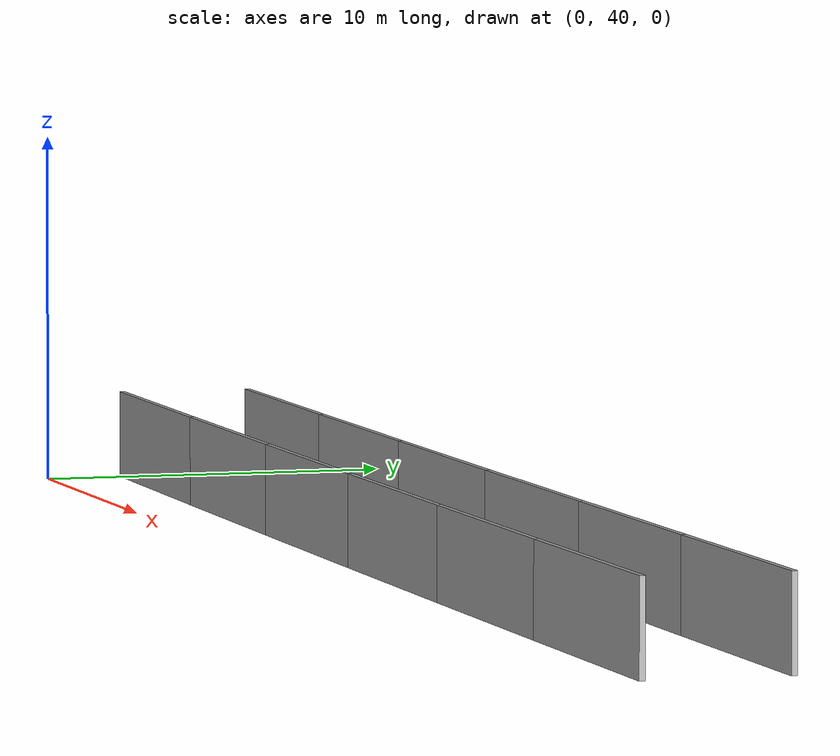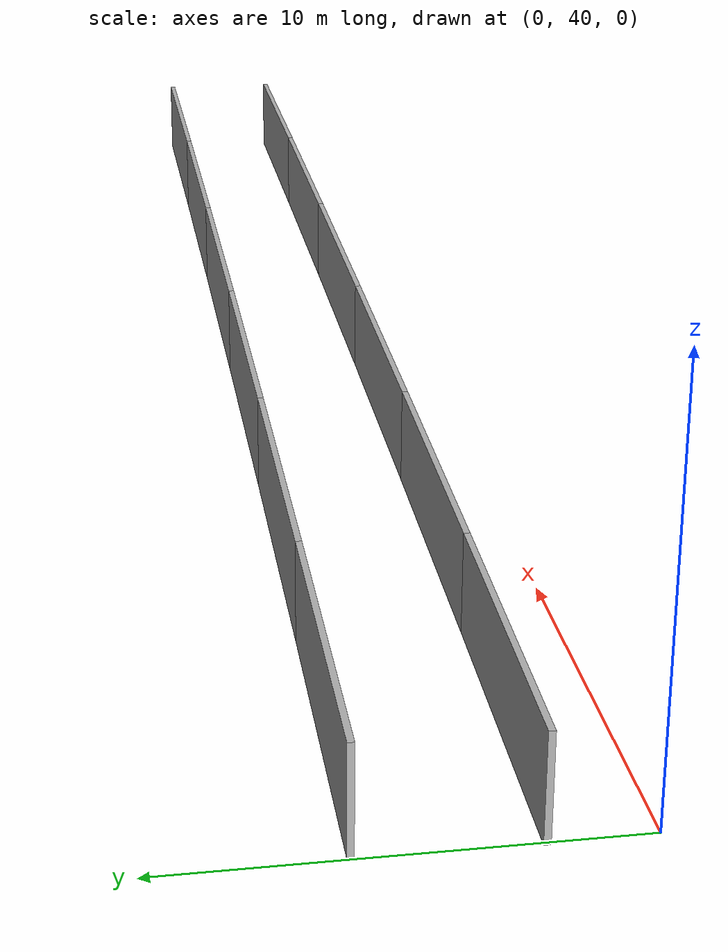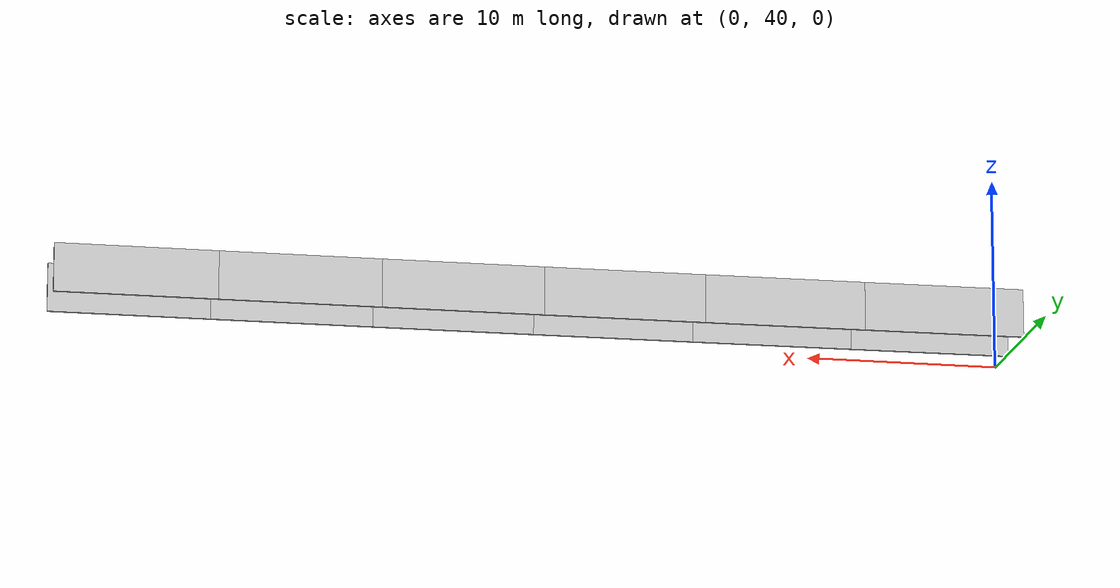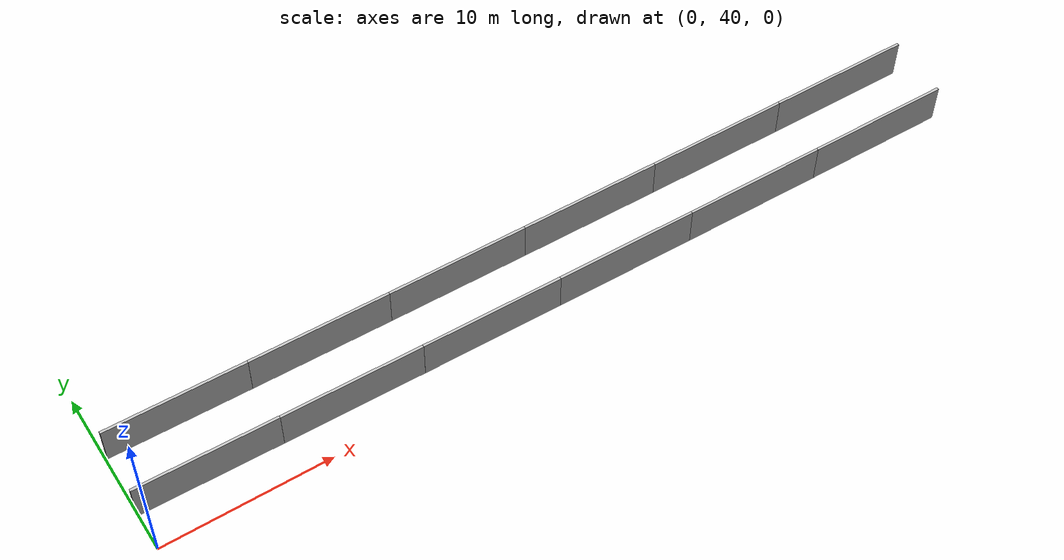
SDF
<?xml version="1.0" ?>
<sdf version="1.6">
  <model name="sps_4301">
    <pose frame="">0 0 0 0 -0 0</pose>
    <static>1</static>
    <self_collide>0</self_collide>
    <allow_auto_disable>0</allow_auto_disable>
    <link name="Wall8920">
      <kinematic>0</kinematic>
      <gravity>1</gravity>
      <self_collide>0</self_collide>
      <collision name="collision">
        <geometry>
          <box>
            <size>8.25175 0.15 2.5</size>
          </box>
        </geometry>
        <pose frame="">0 0 0 0 -0 0</pose>
      </collision>
      <visual name="visual">
        <geometry>
          <box>
            <size>8.25175 0.15 2.5</size>
          </box>
        </geometry>
        <pose frame="">0 0 0 0 -0 0</pose>
        <cast_shadows>1</cast_shadows>
        <transparency>0.0</transparency>
      </visual>
      <pose frame="">4.21148 45.9425 1.25 0 0 -0.0152155</pose>
    </link>
    <link name="Wall8921">
      <kinematic>0</kinematic>
      <gravity>1</gravity>
      <self_collide>0</self_collide>
      <collision name="collision">
        <geometry>
          <box>
            <size>8.25185 0.15 2.5</size>
          </box>
        </geometry>
        <pose frame="">0 0 0 0 -0 0</pose>
      </collision>
      <visual name="visual">
        <geometry>
          <box>
            <size>8.25185 0.15 2.5</size>
          </box>
        </geometry>
        <pose frame="">0 0 0 0 -0 0</pose>
        <cast_shadows>1</cast_shadows>
        <transparency>0.0</transparency>
      </visual>
      <pose frame="">12.4625 45.8265 1.25 0 0 -0.0128999</pose>
    </link>
    <link name="Wall8922">
      <kinematic>0</kinematic>
      <gravity>1</gravity>
      <self_collide>0</self_collide>
      <collision name="collision">
        <geometry>
          <box>
            <size>8.25168 0.15 2.5</size>
          </box>
        </geometry>
        <pose frame="">0 0 0 0 -0 0</pose>
      </collision>
      <visual name="visual">
        <geometry>
          <box>
            <size>8.25168 0.15 2.5</size>
          </box>
        </geometry>
        <pose frame="">0 0 0 0 -0 0</pose>
        <cast_shadows>1</cast_shadows>
        <transparency>0.0</transparency>
      </visual>
      <pose frame="">20.7136 45.7299 1.25 0 0 -0.0105183</pose>
    </link>
    <link name="Wall8923">
      <kinematic>0</kinematic>
      <gravity>1</gravity>
      <self_collide>0</self_collide>
      <collision name="collision">
        <geometry>
          <box>
            <size>8.25186 0.15 2.5</size>
          </box>
        </geometry>
        <pose frame="">0 0 0 0 -0 0</pose>
      </collision>
      <visual name="visual">
        <geometry>
          <box>
            <size>8.25186 0.15 2.5</size>
          </box>
        </geometry>
        <pose frame="">0 0 0 0 -0 0</pose>
        <cast_shadows>1</cast_shadows>
        <transparency>0.0</transparency>
      </visual>
      <pose frame="">28.965 45.6529 1.25 0 0 -0.00814367</pose>
    </link>
    <link name="Wall8924">
      <kinematic>0</kinematic>
      <gravity>1</gravity>
      <self_collide>0</self_collide>
      <collision name="collision">
        <geometry>
          <box>
            <size>8.25173 0.15 2.5</size>
          </box>
        </geometry>
        <pose frame="">0 0 0 0 -0 0</pose>
      </collision>
      <visual name="visual">
        <geometry>
          <box>
            <size>8.25173 0.15 2.5</size>
          </box>
        </geometry>
        <pose frame="">0 0 0 0 -0 0</pose>
        <cast_shadows>1</cast_shadows>
        <transparency>0.0</transparency>
      </visual>
      <pose frame="">37.2166 45.5953 1.25 0 0 -0.0058138</pose>
    </link>
    <link name="Wall8925">
      <kinematic>0</kinematic>
      <gravity>1</gravity>
      <self_collide>0</self_collide>
      <collision name="collision">
        <geometry>
          <box>
            <size>8.25188 0.15 2.5</size>
          </box>
        </geometry>
        <pose frame="">0 0 0 0 -0 0</pose>
      </collision>
      <visual name="visual">
        <geometry>
          <box>
            <size>8.25188 0.15 2.5</size>
          </box>
        </geometry>
        <pose frame="">0 0 0 0 -0 0</pose>
        <cast_shadows>1</cast_shadows>
        <transparency>0.0</transparency>
      </visual>
      <pose frame="">45.4683 45.5572 1.25 0 0 -0.0034172</pose>
    </link>
    <link name="Wall9011">
      <kinematic>0</kinematic>
      <gravity>1</gravity>
      <self_collide>0</self_collide>
      <collision name="collision">
        <geometry>
          <box>
            <size>8.26171 0.15 2.5</size>
          </box>
        </geometry>
        <pose frame="">0 0 0 0 -0 0</pose>
      </collision>
      <visual name="visual">
        <geometry>
          <box>
            <size>8.26171 0.15 2.5</size>
          </box>
        </geometry>
        <pose frame="">0 0 0 0 -0 0</pose>
        <cast_shadows>1</cast_shadows>
        <transparency>0.0</transparency>
      </visual>
      <pose frame="">4.06686 42.1876 1.25 0 0 -0.0152784</pose>
    </link>
    <link name="Wall9012">
      <kinematic>0</kinematic>
      <gravity>1</gravity>
      <self_collide>0</self_collide>
      <collision name="collision">
        <geometry>
          <box>
            <size>8.26192 0.15 2.5</size>
          </box>
        </geometry>
        <pose frame="">0 0 0 0 -0 0</pose>
      </collision>
      <visual name="visual">
        <geometry>
          <box>
            <size>8.26192 0.15 2.5</size>
          </box>
        </geometry>
        <pose frame="">0 0 0 0 -0 0</pose>
        <cast_shadows>1</cast_shadows>
        <transparency>0.0</transparency>
      </visual>
      <pose frame="">12.3278 42.0712 1.25 0 0 -0.012899</pose>
    </link>
    <link name="Wall9013">
      <kinematic>0</kinematic>
      <gravity>1</gravity>
      <self_collide>0</self_collide>
      <collision name="collision">
        <geometry>
          <box>
            <size>8.26187 0.15 2.5</size>
          </box>
        </geometry>
        <pose frame="">0 0 0 0 -0 0</pose>
      </collision>
      <visual name="visual">
        <geometry>
          <box>
            <size>8.26187 0.15 2.5</size>
          </box>
        </geometry>
        <pose frame="">0 0 0 0 -0 0</pose>
        <cast_shadows>1</cast_shadows>
        <transparency>0.0</transparency>
      </visual>
      <pose frame="">20.5892 41.9743 1.25 0 0 -0.010557</pose>
    </link>
    <link name="Wall9014">
      <kinematic>0</kinematic>
      <gravity>1</gravity>
      <self_collide>0</self_collide>
      <collision name="collision">
        <geometry>
          <box>
            <size>8.26169 0.15 2.5</size>
          </box>
        </geometry>
        <pose frame="">0 0 0 0 -0 0</pose>
      </collision>
      <visual name="visual">
        <geometry>
          <box>
            <size>8.26169 0.15 2.5</size>
          </box>
        </geometry>
        <pose frame="">0 0 0 0 -0 0</pose>
        <cast_shadows>1</cast_shadows>
        <transparency>0.0</transparency>
      </visual>
      <pose frame="">28.8506 41.8969 1.25 0 0 -0.00817831</pose>
    </link>
    <link name="Wall9015">
      <kinematic>0</kinematic>
      <gravity>1</gravity>
      <self_collide>0</self_collide>
      <collision name="collision">
        <geometry>
          <box>
            <size>8.26174 0.15 2.5</size>
          </box>
        </geometry>
        <pose frame="">0 0 0 0 -0 0</pose>
      </collision>
      <visual name="visual">
        <geometry>
          <box>
            <size>8.26174 0.15 2.5</size>
          </box>
        </geometry>
        <pose frame="">0 0 0 0 -0 0</pose>
        <cast_shadows>1</cast_shadows>
        <transparency>0.0</transparency>
      </visual>
      <pose frame="">37.1121 41.8391 1.25 0 0 -0.00581415</pose>
    </link>
    <link name="Wall9016">
      <kinematic>0</kinematic>
      <gravity>1</gravity>
      <self_collide>0</self_collide>
      <collision name="collision">
        <geometry>
          <box>
            <size>8.26183 0.15 2.5</size>
          </box>
        </geometry>
        <pose frame="">0 0 0 0 -0 0</pose>
      </collision>
      <visual name="visual">
        <geometry>
          <box>
            <size>8.26183 0.15 2.5</size>
          </box>
        </geometry>
        <pose frame="">0 0 0 0 -0 0</pose>
        <cast_shadows>1</cast_shadows>
        <transparency>0.0</transparency>
      </visual>
      <pose frame="">45.3738 41.8008 1.25 0 0 -0.00345741</pose>
    </link>
  </model>
</sdf>
